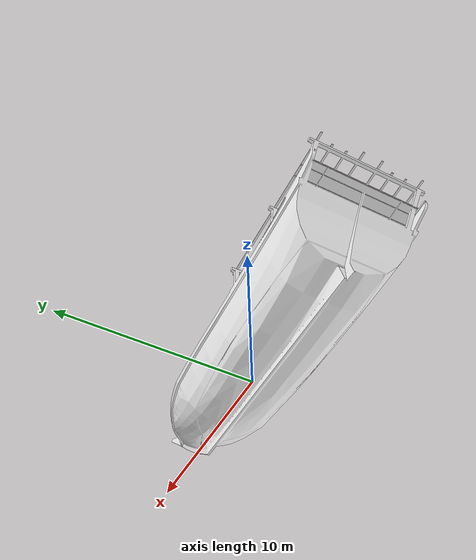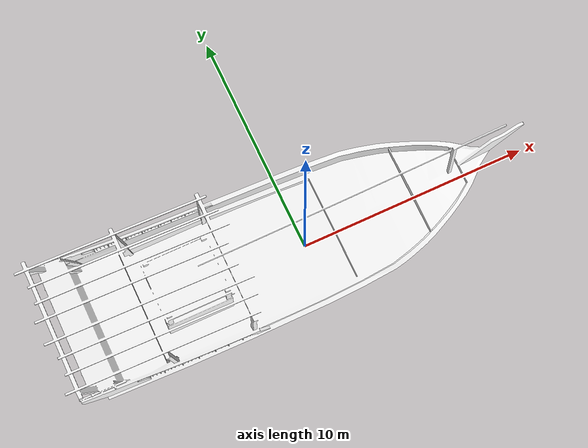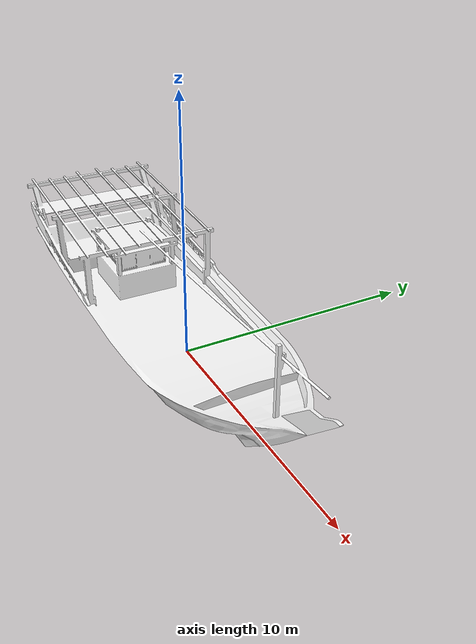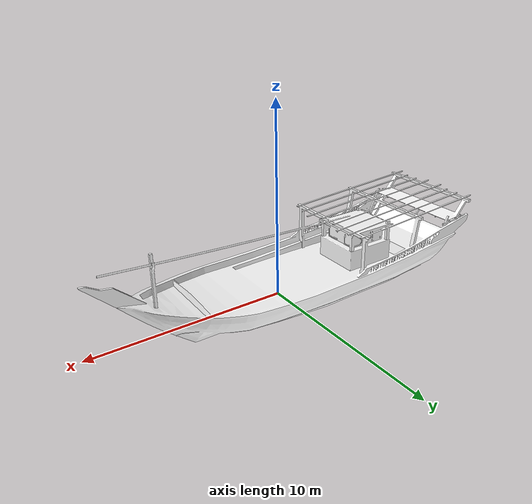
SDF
<?xml version='1.0' ?>
<sdf version="1.6">
  <model name="vessel_c">
    <static>false</static>
    <link name="link">
      <enable_wind>true</enable_wind>
      <kinematic>true</kinematic>
      <inertial>
        <mass>3000.0</mass>
        <inertia>
          <ixx>13000</ixx>
          <ixy>0.0</ixy>
          <ixz>0.0</ixz>
          <iyy>125000</iyy>
          <iyz>0.0</iyz>
          <izz>130000</izz>
        </inertia>
      </inertial>
      <visual name="visual">
        <pose>0 0 0 0 0 1.5708</pose>
        <geometry>
          <mesh>
            <uri>model://VesselC/meshes/Boat03.dae</uri>
            <scale>0.9 0.9 0.9</scale>
          </mesh>
        </geometry>
        <material>
          <diffuse>1.0 1.0 1.0</diffuse>
          <specular>1.0 1.0 1.0</specular>
          <script>
            <uri>model://VesselC/materials/scripts</uri>
            <uri>model://VesselC/materials/textures</uri>
            <name>VesselC/tex</name>
          </script>
        </material>
      </visual>
      <collision name="collision">
        <pose>0 0 0 0 0 1.5708</pose>
        <geometry>
          <mesh>
            <uri>model://VesselC/meshes/Boat03.dae</uri>
            <scale>0.9 0.9 0.9</scale>
          </mesh>
        </geometry>
      </collision>
    </link>
  </model>
</sdf>
